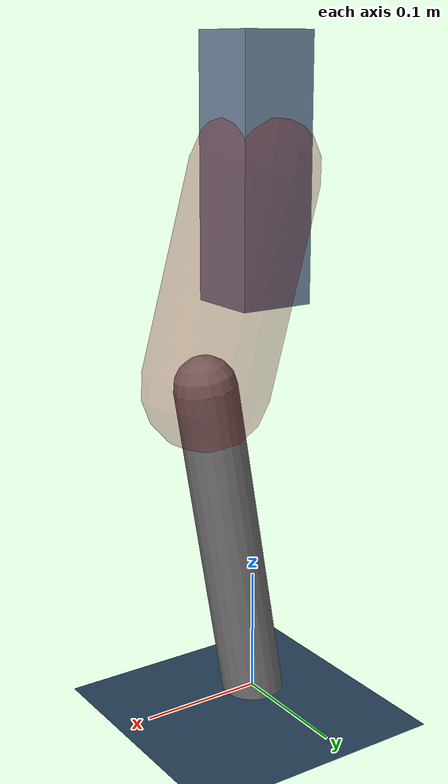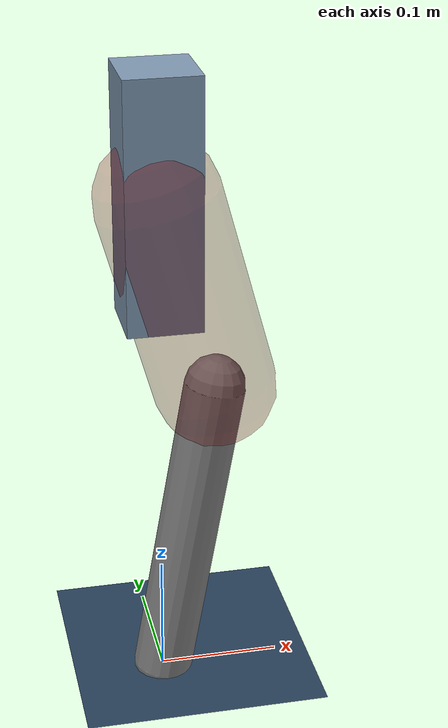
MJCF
<mujoco model="Hopper2D">
	<compiler inertiafromgeom="true" angle="radian" />
	<option timestep="0.001" integrator="implicit" cone="elliptic" solver="Newton" tolerance="1e-10" />

	<default>
		<geom contype="1" conaffinity="1" condim="3" friction="2 0.005 0.0001" solref="0.005 1" />
		<joint limited="true" damping="0.1" />
	</default>

	<asset>
		<texture name="skybox" type="skybox" builtin="gradient" rgb1=".4 .6 .8" rgb2="0 0 0" width="800" height="800" />
		<texture name="grid" type="2d" builtin="checker" rgb1=".1 .2 .3" rgb2=".2 .3 .4" width="300" height="300" mark="edge" markrgb=".2 .3 .4" />
		<material name="ground" texture="grid" texrepeat="1 1" texuniform="true" reflectance="0.1" />
		<material name="leg" rgba="0.5 0.6 0.7 1" />
	</asset>

	<worldbody>

		<geom name="floor" type="plane" size="5 5 0.25" material="ground" />

		<light directional="false" diffuse="0.8 0.8 0.8" specular="0.3 0.3 0.3" pos="0 0 2" dir="0 0 -1" />
		<light mode="targetbodycom" target="base" directional="false" diffuse="0.8 0.8 0.8" specular="0.3 0.3 0.3" pos="0 0 2" dir="0 0 -1" />

		<camera name="fixed" pos="0 -2 1" xyaxes="1 0 0 0 0 1" />
		<camera name="tracking" mode="trackcom" pos="0 -3 1" />

		<body name="root" pos="0 0 0.426625337565251">
			<joint name="slide_x" type="slide" axis="1 0 0" range="-100 100" />
			<joint name="slide_z" type="slide" axis="0 0 1" range="0 10" />

			<body name="base" pos="0 0 0">
				<geom name="torso" type="box" size="0.03 0.03 0.1" mass="1.571" material="leg" />

				<body name="link1" pos="0 0 0" euler="0 1.2978940806141714 0">
					<joint type="hinge" axis="0 -1 0" pos="0 0 0" name="hinge1" limited="true" range="-3.14 3.14" stiffness="0" damping="0.1" />
					<geom name="thigh" type="capsule" fromto="0 0 0 0.1673729069079175 0 0" size="0.05" rgba="0.5 0 0 0.3" mass="0.649994976579002" />

					<body name="link2" pos="0.1673729069079175 0 0" euler="0 0.4412400082116658 0">
						<joint type="hinge" axis="0 -1 0" pos="0 0 0" name="hinge2" limited="true" range="-3.14 3.14" stiffness="0" damping="0.1" />
						<geom name="shank" type="capsule" fromto="0 0 0 0.2692524306573335 0 0" size="0.025" mass="0.4583019445258668" />

					</body>
				</body>
			</body>
		</body>
	</worldbody>

	<actuator>
		<motor name="torque1" joint="hinge1" ctrlrange="-47.94398478034311 47.94398478034311" ctrllimited="true" gear="1" />
		<motor name="torque2" joint="hinge2" ctrlrange="-28.334862117761464 28.334862117761464" ctrllimited="true" gear="1" />
	</actuator>
</mujoco>
